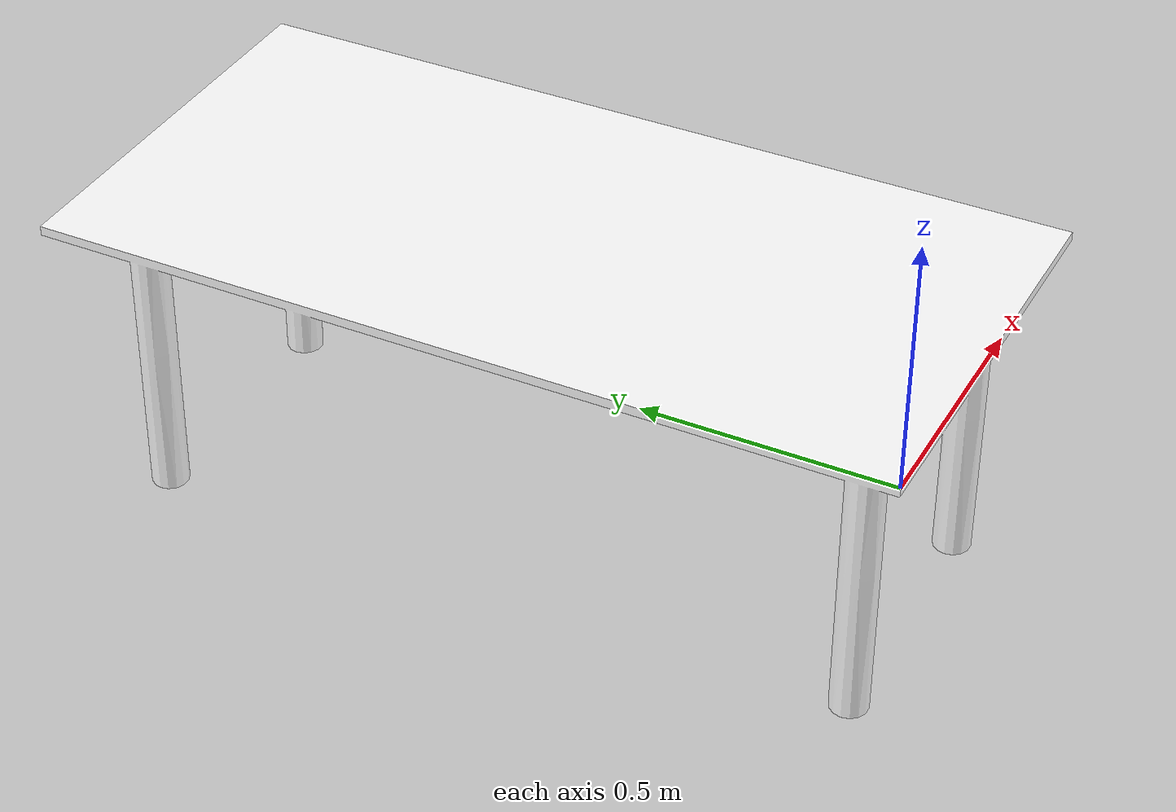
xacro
<?xml version="1.0"?>
<robot xmlns:xacro="http://www.ros.org/wiki/xacro" name="dielectrometer_table_1800_900_700_body" >
  <link name="DIELECTROMETER_TABLE_1800_900_700_BODY">
    <inertial>
     <origin xyz="0 0 0" rpy="0 0 0"/>
     <mass value="15.0"/>
     <inertia ixx="5.0"  ixy="0.0"  ixz="0.0" iyy="5.0" iyz="0.0" izz="0.5" />
    </inertial>
    <visual>
     <origin xyz="0 0 0" rpy="0 0 0" />
     <geometry>
       <mesh filename="file://$(find auto_dem)/models/meshes/table-1800-900-700.dae" scale="1 1 1"/>
     </geometry>
    </visual>
    <collision>
     <origin xyz="0 0 0" rpy="0 0 0"/>
     <geometry>
       <mesh filename="file://$(find auto_dem)/models/meshes/table-1800-900-700.dae" scale="1 1 1"/>
     </geometry>
    </collision>
  </link>
</robot>
